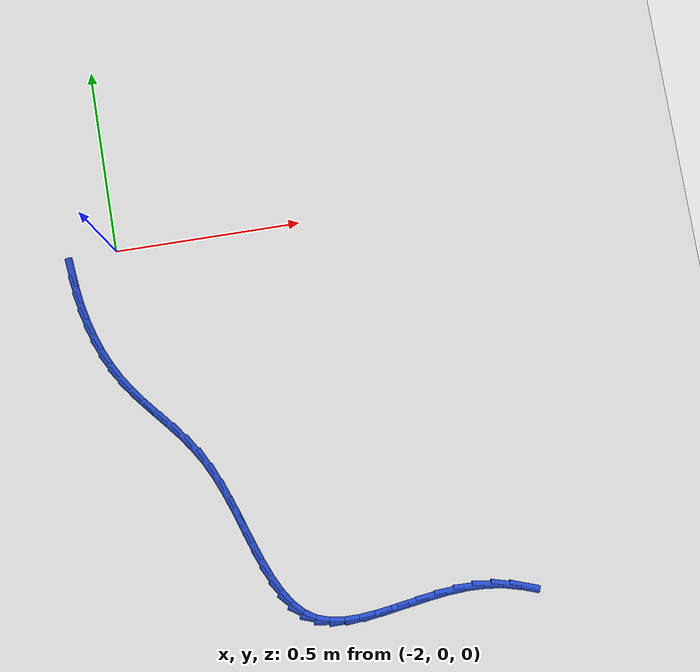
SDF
<sdf version="1.6">
 <world name="default">
  <model name="ground_plane">
   <static>1</static>
   <link name="link">
    <collision name="collision">
     <geometry><plane><normal>0 0 1</normal><size>100 100</size></plane></geometry>
     <surface><friction><ode><mu>100</mu><mu2>50</mu2></ode></friction></surface>
    </collision>
    <visual name="visual">
     <cast_shadows>0</cast_shadows>
     <geometry><plane><normal>0 0 1</normal><size>100 100</size></plane></geometry>
     <material>
      <script><uri>file://media/materials/scripts/gazebo.material</uri><name>Gazebo/WhiteGlow</name></script>
     </material>
    </visual>
   </link>
  </model>
  <model name="line">
   <link name="link_75">
    <pose>-2.124691125759527 -0.04123102063001245 0.01 0 1.57 -1.4700198959011697</pose>
    <collision name="collision">
     <geometry><cylinder><radius>0.01</radius><length>0.08</length></cylinder></geometry>
    </collision>
    <visual name="visual">
     <material>
      <script><name>Gazebo/Blue</name><uri>file://media/materials/scripts/gazebo.material</uri></script>
     </material>
     <geometry><cylinder><radius>0.01</radius><length>0.08</length></cylinder></geometry>
    </visual>
   </link>
   <link name="link_76">
    <pose>-2.1199609394238825 -0.08800944251932735 0.01 0 1.57 -1.4146267258925171</pose>
    <collision name="collision">
     <geometry><cylinder><radius>0.01</radius><length>0.08</length></cylinder></geometry>
    </collision>
    <visual name="visual">
     <material>
      <script><name>Gazebo/Blue</name><uri>file://media/materials/scripts/gazebo.material</uri></script>
     </material>
     <geometry><cylinder><radius>0.01</radius><length>0.08</length></cylinder></geometry>
    </visual>
   </link>
   <link name="link_77">
    <pose>-2.1127291262321557 -0.1339397979767713 0.01 0 1.57 -1.354823366699731</pose>
    <collision name="collision">
     <geometry><cylinder><radius>0.01</radius><length>0.08</length></cylinder></geometry>
    </collision>
    <visual name="visual">
     <material>
      <script><name>Gazebo/Blue</name><uri>file://media/materials/scripts/gazebo.material</uri></script>
     </material>
     <geometry><cylinder><radius>0.01</radius><length>0.08</length></cylinder></geometry>
    </visual>
   </link>
   <link name="link_78">
    <pose>-2.102884230996441 -0.1788127655897083 0.01 0 1.57 -1.2901554156280943</pose>
    <collision name="collision">
     <geometry><cylinder><radius>0.01</radius><length>0.08</length></cylinder></geometry>
    </collision>
    <visual name="visual">
     <material>
      <script><name>Gazebo/Blue</name><uri>file://media/materials/scripts/gazebo.material</uri></script>
     </material>
     <geometry><cylinder><radius>0.01</radius><length>0.08</length></cylinder></geometry>
    </visual>
   </link>
   <link name="link_79">
    <pose>-2.0903147985288326 -0.2224190239455045 0.01 0 1.57 -1.2202373896800103</pose>
    <collision name="collision">
     <geometry><cylinder><radius>0.01</radius><length>0.08</length></cylinder></geometry>
    </collision>
    <visual name="visual">
     <material>
      <script><name>Gazebo/Blue</name><uri>file://media/materials/scripts/gazebo.material</uri></script>
     </material>
     <geometry><cylinder><radius>0.01</radius><length>0.08</length></cylinder></geometry>
    </visual>
   </link>
   <link name="link_80">
    <pose>-2.0749093736414257 -0.2645492516315232 0.01 0 1.57 -1.1448075654654764</pose>
    <collision name="collision">
     <geometry><cylinder><radius>0.01</radius><length>0.08</length></cylinder></geometry>
    </collision>
    <visual name="visual">
     <material>
      <script><name>Gazebo/Blue</name><uri>file://media/materials/scripts/gazebo.material</uri></script>
     </material>
     <geometry><cylinder><radius>0.01</radius><length>0.08</length></cylinder></geometry>
    </visual>
   </link>
   <link name="link_81">
    <pose>-2.0565565011463147 -0.30499412723513053 0.01 0 1.57 -1.0637970115331492</pose>
    <collision name="collision">
     <geometry><cylinder><radius>0.01</radius><length>0.08</length></cylinder></geometry>
    </collision>
    <visual name="visual">
     <material>
      <script><name>Gazebo/Blue</name><uri>file://media/materials/scripts/gazebo.material</uri></script>
     </material>
     <geometry><cylinder><radius>0.01</radius><length>0.08</length></cylinder></geometry>
    </visual>
   </link>
   <link name="link_82">
    <pose>-2.0351447258555933 -0.34354432934369034 0.01 0 1.57 -0.9784634881541739</pose>
    <collision name="collision">
     <geometry><cylinder><radius>0.01</radius><length>0.08</length></cylinder></geometry>
    </collision>
    <visual name="visual">
     <material>
      <script><name>Gazebo/Blue</name><uri>file://media/materials/scripts/gazebo.material</uri></script>
     </material>
     <geometry><cylinder><radius>0.01</radius><length>0.08</length></cylinder></geometry>
    </visual>
   </link>
   <link name="link_83">
    <pose>-2.0105960217903758 -0.380024132450832 0.01 0 1.57 -0.9081283605643424</pose>
    <collision name="collision">
     <geometry><cylinder><radius>0.01</radius><length>0.08</length></cylinder></geometry>
    </collision>
    <visual name="visual">
     <material>
      <script><name>Gazebo/Blue</name><uri>file://media/materials/scripts/gazebo.material</uri></script>
     </material>
     <geometry><cylinder><radius>0.01</radius><length>0.08</length></cylinder></geometry>
    </visual>
   </link>
   <link name="link_84">
    <pose>-1.9834197595827987 -0.4148481367582705 0.01 0 1.57 -0.8693866850327507</pose>
    <collision name="collision">
     <geometry><cylinder><radius>0.01</radius><length>0.08</length></cylinder></geometry>
    </collision>
    <visual name="visual">
     <material>
      <script><name>Gazebo/Blue</name><uri>file://media/materials/scripts/gazebo.material</uri></script>
     </material>
     <geometry><cylinder><radius>0.01</radius><length>0.08</length></cylinder></geometry>
    </visual>
   </link>
   <link name="link_85">
    <pose>-1.954626697162095 -0.44893482997000655 0.01 0 1.57 -0.8622256999010799</pose>
    <collision name="collision">
     <geometry><cylinder><radius>0.01</radius><length>0.08</length></cylinder></geometry>
    </collision>
    <visual name="visual">
     <material>
      <script><name>Gazebo/Blue</name><uri>file://media/materials/scripts/gazebo.material</uri></script>
     </material>
     <geometry><cylinder><radius>0.01</radius><length>0.08</length></cylinder></geometry>
    </visual>
   </link>
   <link name="link_86">
    <pose>-1.9252436845266205 -0.48321887210347236 0.01 0 1.57 -0.8855855401181026</pose>
    <collision name="collision">
     <geometry><cylinder><radius>0.01</radius><length>0.08</length></cylinder></geometry>
    </collision>
    <visual name="visual">
     <material>
      <script><name>Gazebo/Blue</name><uri>file://media/materials/scripts/gazebo.material</uri></script>
     </material>
     <geometry><cylinder><radius>0.01</radius><length>0.08</length></cylinder></geometry>
    </visual>
   </link>
   <link name="link_87">
    <pose>-1.8962975716747323 -0.5186349231760986 0.01 0 1.57 -0.9381336343503801</pose>
    <collision name="collision">
     <geometry><cylinder><radius>0.01</radius><length>0.08</length></cylinder></geometry>
    </collision>
    <visual name="visual">
     <material>
      <script><name>Gazebo/Blue</name><uri>file://media/materials/scripts/gazebo.material</uri></script>
     </material>
     <geometry><cylinder><radius>0.01</radius><length>0.08</length></cylinder></geometry>
    </visual>
   </link>
   <link name="link_88">
    <pose>-1.86881520860479 -0.5561176432053163 0.01 0 1.57 -1.0177260478999262</pose>
    <collision name="collision">
     <geometry><cylinder><radius>0.01</radius><length>0.08</length></cylinder></geometry>
    </collision>
    <visual name="visual">
     <material>
      <script><name>Gazebo/Blue</name><uri>file://media/materials/scripts/gazebo.material</uri></script>
     </material>
     <geometry><cylinder><radius>0.01</radius><length>0.08</length></cylinder></geometry>
    </visual>
   </link>
   <link name="link_89">
    <pose>-1.843823117212242 -0.596601313779509 0.01 0 1.57 -1.1091213118437147</pose>
    <collision name="collision">
     <geometry><cylinder><radius>0.01</radius><length>0.08</length></cylinder></geometry>
    </collision>
    <visual name="visual">
     <material>
      <script><name>Gazebo/Blue</name><uri>file://media/materials/scripts/gazebo.material</uri></script>
     </material>
     <geometry><cylinder><radius>0.01</radius><length>0.08</length></cylinder></geometry>
    </visual>
   </link>
   <link name="link_90">
    <pose>-1.8219508723202977 -0.6405623835938986 0.01 0 1.57 -1.1780730105006538</pose>
    <collision name="collision">
     <geometry><cylinder><radius>0.01</radius><length>0.08</length></cylinder></geometry>
    </collision>
    <visual name="visual">
     <material>
      <script><name>Gazebo/Blue</name><uri>file://media/materials/scripts/gazebo.material</uri></script>
     </material>
     <geometry><cylinder><radius>0.01</radius><length>0.08</length></cylinder></geometry>
    </visual>
   </link>
   <link name="link_91">
    <pose>-1.8026603884798529 -0.6871305392233041 0.01 0 1.57 -1.2223083318107517</pose>
    <collision name="collision">
     <geometry><cylinder><radius>0.01</radius><length>0.08</length></cylinder></geometry>
    </collision>
    <visual name="visual">
     <material>
      <script><name>Gazebo/Blue</name><uri>file://media/materials/scripts/gazebo.material</uri></script>
     </material>
     <geometry><cylinder><radius>0.01</radius><length>0.08</length></cylinder></geometry>
    </visual>
   </link>
   <link name="link_92">
    <pose>-1.785199955101621 -0.7351890751595189 0.01 0 1.57 -1.2446292040769782</pose>
    <collision name="collision">
     <geometry><cylinder><radius>0.01</radius><length>0.08</length></cylinder></geometry>
    </collision>
    <visual name="visual">
     <material>
      <script><name>Gazebo/Blue</name><uri>file://media/materials/scripts/gazebo.material</uri></script>
     </material>
     <geometry><cylinder><radius>0.01</radius><length>0.08</length></cylinder></geometry>
    </visual>
   </link>
   <link name="link_93">
    <pose>-1.7688178615963162 -0.783621285894334 0.01 0 1.57 -1.2460467641077821</pose>
    <collision name="collision">
     <geometry><cylinder><radius>0.01</radius><length>0.08</length></cylinder></geometry>
    </collision>
    <visual name="visual">
     <material>
      <script><name>Gazebo/Blue</name><uri>file://media/materials/scripts/gazebo.material</uri></script>
     </material>
     <geometry><cylinder><radius>0.01</radius><length>0.08</length></cylinder></geometry>
    </visual>
   </link>
   <link name="link_94">
    <pose>-1.7527623973746516 -0.8313104659195429 0.01 0 1.57 -1.22558953662087</pose>
    <collision name="collision">
     <geometry><cylinder><radius>0.01</radius><length>0.08</length></cylinder></geometry>
    </collision>
    <visual name="visual">
     <material>
      <script><name>Gazebo/Blue</name><uri>file://media/materials/scripts/gazebo.material</uri></script>
     </material>
     <geometry><cylinder><radius>0.01</radius><length>0.08</length></cylinder></geometry>
    </visual>
   </link>
   <link name="link_95">
    <pose>-1.7362818518473409 -0.8771399097269375 0.01 0 1.57 -1.1799502019664923</pose>
    <collision name="collision">
     <geometry><cylinder><radius>0.01</radius><length>0.08</length></cylinder></geometry>
    </collision>
    <visual name="visual">
     <material>
      <script><name>Gazebo/Blue</name><uri>file://media/materials/scripts/gazebo.material</uri></script>
     </material>
     <geometry><cylinder><radius>0.01</radius><length>0.08</length></cylinder></geometry>
    </visual>
   </link>
   <link name="link_96">
    <pose>-1.7186245144250982 -0.9199929118083089 0.01 0 1.57 -1.102907739822609</pose>
    <collision name="collision">
     <geometry><cylinder><radius>0.01</radius><length>0.08</length></cylinder></geometry>
    </collision>
    <visual name="visual">
     <material>
      <script><name>Gazebo/Blue</name><uri>file://media/materials/scripts/gazebo.material</uri></script>
     </material>
     <geometry><cylinder><radius>0.01</radius><length>0.08</length></cylinder></geometry>
    </visual>
   </link>
   <link name="link_97">
    <pose>-1.6990386745186363 -0.958752766655451 0.01 0 1.57 -0.9848728005514489</pose>
    <collision name="collision">
     <geometry><cylinder><radius>0.01</radius><length>0.08</length></cylinder></geometry>
    </collision>
    <visual name="visual">
     <material>
      <script><name>Gazebo/Blue</name><uri>file://media/materials/scripts/gazebo.material</uri></script>
     </material>
     <geometry><cylinder><radius>0.01</radius><length>0.08</length></cylinder></geometry>
    </visual>
   </link>
   <link name="link_98">
    <pose>-1.67677262153867 -0.9923027687601546 0.01 0 1.57 -0.8142153211711299</pose>
    <collision name="collision">
     <geometry><cylinder><radius>0.01</radius><length>0.08</length></cylinder></geometry>
    </collision>
    <visual name="visual">
     <material>
      <script><name>Gazebo/Blue</name><uri>file://media/materials/scripts/gazebo.material</uri></script>
     </material>
     <geometry><cylinder><radius>0.01</radius><length>0.08</length></cylinder></geometry>
    </visual>
   </link>
   <link name="link_99">
    <pose>-1.6510746448959124 -1.0195262126142133 0.01 0 1.57 -0.5848457289060736</pose>
    <collision name="collision">
     <geometry><cylinder><radius>0.01</radius><length>0.08</length></cylinder></geometry>
    </collision>
    <visual name="visual">
     <material>
      <script><name>Gazebo/Blue</name><uri>file://media/materials/scripts/gazebo.material</uri></script>
     </material>
     <geometry><cylinder><radius>0.01</radius><length>0.08</length></cylinder></geometry>
    </visual>
   </link>
   <link name="link_100">
    <pose>-1.6211949952531923 -1.0393100156254163 0.01 0 1.57 -0.33400048587377956</pose>
    <collision name="collision">
     <geometry><cylinder><radius>0.01</radius><length>0.08</length></cylinder></geometry>
    </collision>
    <visual name="visual">
     <material>
      <script><name>Gazebo/Blue</name><uri>file://media/materials/scripts/gazebo.material</uri></script>
     </material>
     <geometry><cylinder><radius>0.01</radius><length>0.08</length></cylinder></geometry>
    </visual>
   </link>
   <link name="link_101">
    <pose>-1.5867705671861345 -1.0512553217946938 0.01 0 1.57 -0.13624378774731652</pose>
    <collision name="collision">
     <geometry><cylinder><radius>0.01</radius><length>0.08</length></cylinder></geometry>
    </collision>
    <visual name="visual">
     <material>
      <script><name>Gazebo/Blue</name><uri>file://media/materials/scripts/gazebo.material</uri></script>
     </material>
     <geometry><cylinder><radius>0.01</radius><length>0.08</length></cylinder></geometry>
    </visual>
   </link>
   <link name="link_102">
    <pose>-1.5482870188440752 -1.0565311506166282 0.01 0 1.57 0.00039112940754568306</pose>
    <collision name="collision">
     <geometry><cylinder><radius>0.01</radius><length>0.08</length></cylinder></geometry>
    </collision>
    <visual name="visual">
     <material>
      <script><name>Gazebo/Blue</name><uri>file://media/materials/scripts/gazebo.material</uri></script>
     </material>
     <geometry><cylinder><radius>0.01</radius><length>0.08</length></cylinder></geometry>
    </visual>
   </link>
   <link name="link_103">
    <pose>-1.5063427293321976 -1.0565147449706849 0.01 0 1.57 0.08751724929016876</pose>
    <collision name="collision">
     <geometry><cylinder><radius>0.01</radius><length>0.08</length></cylinder></geometry>
    </collision>
    <visual name="visual">
     <material>
      <script><name>Gazebo/Blue</name><uri>file://media/materials/scripts/gazebo.material</uri></script>
     </material>
     <geometry><cylinder><radius>0.01</radius><length>0.08</length></cylinder></geometry>
    </visual>
   </link>
   <link name="link_104">
    <pose>-1.4615360777556836 -1.0525833477363307 0.01 0 1.57 0.1365792280393224</pose>
    <collision name="collision">
     <geometry><cylinder><radius>0.01</radius><length>0.08</length></cylinder></geometry>
    </collision>
    <visual name="visual">
     <material>
      <script><name>Gazebo/Blue</name><uri>file://media/materials/scripts/gazebo.material</uri></script>
     </material>
     <geometry><cylinder><radius>0.01</radius><length>0.08</length></cylinder></geometry>
    </visual>
   </link>
   <link name="link_105">
    <pose>-1.4144654432197123 -1.0461142017930307 0.01 0 1.57 0.15528945172906253</pose>
    <collision name="collision">
     <geometry><cylinder><radius>0.01</radius><length>0.08</length></cylinder></geometry>
    </collision>
    <visual name="visual">
     <material>
      <script><name>Gazebo/Blue</name><uri>file://media/materials/scripts/gazebo.material</uri></script>
     </material>
     <geometry><cylinder><radius>0.01</radius><length>0.08</length></cylinder></geometry>
    </visual>
   </link>
   <link name="link_106">
    <pose>-1.3657292048294678 -1.0384845500202518 0.01 0 1.57 0.14775856647262406</pose>
    <collision name="collision">
     <geometry><cylinder><radius>0.01</radius><length>0.08</length></cylinder></geometry>
    </collision>
    <visual name="visual">
     <material>
      <script><name>Gazebo/Blue</name><uri>file://media/materials/scripts/gazebo.material</uri></script>
     </material>
     <geometry><cylinder><radius>0.01</radius><length>0.08</length></cylinder></geometry>
    </visual>
   </link>
   <link name="link_107">
    <pose>-1.3159257416901287 -1.0310716352974592 0.01 0 1.57 0.11523550691735754</pose>
    <collision name="collision">
     <geometry><cylinder><radius>0.01</radius><length>0.08</length></cylinder></geometry>
    </collision>
    <visual name="visual">
     <material>
      <script><name>Gazebo/Blue</name><uri>file://media/materials/scripts/gazebo.material</uri></script>
     </material>
     <geometry><cylinder><radius>0.01</radius><length>0.08</length></cylinder></geometry>
    </visual>
   </link>
   <link name="link_108">
    <pose>-1.2656534329068772 -1.0252527005041188 0.01 0 1.57 0.05673112956055907</pose>
    <collision name="collision">
     <geometry><cylinder><radius>0.01</radius><length>0.08</length></cylinder></geometry>
    </collision>
    <visual name="visual">
     <material>
      <script><name>Gazebo/Blue</name><uri>file://media/materials/scripts/gazebo.material</uri></script>
     </material>
     <geometry><cylinder><radius>0.01</radius><length>0.08</length></cylinder></geometry>
    </visual>
   </link>
   <link name="link_109">
    <pose>-1.2155106575848957 -1.0224049885196966 0.01 0 1.57 -0.03036115978798175</pose>
    <collision name="collision">
     <geometry><cylinder><radius>0.01</radius><length>0.08</length></cylinder></geometry>
    </collision>
    <visual name="visual">
     <material>
      <script><name>Gazebo/Blue</name><uri>file://media/materials/scripts/gazebo.material</uri></script>
     </material>
     <geometry><cylinder><radius>0.01</radius><length>0.08</length></cylinder></geometry>
    </visual>
   </link>
   <link name="link_110">
    <pose>-1.1660957948293635 -1.023905742223659 0.01 0 1.57 -0.14737256381780198</pose>
    <collision name="collision">
     <geometry><cylinder><radius>0.01</radius><length>0.08</length></cylinder></geometry>
    </collision>
    <visual name="visual">
     <material>
      <script><name>Gazebo/Blue</name><uri>file://media/materials/scripts/gazebo.material</uri></script>
     </material>
     <geometry><cylinder><radius>0.01</radius><length>0.08</length></cylinder></geometry>
    </visual>
   </link>
   <link name="link_111">
    <pose>-1.1179880354492722 -1.031047282670404 0.01 0 1.57 -0.26124336589440444</pose>
    <collision name="collision">
     <geometry><cylinder><radius>0.01</radius><length>0.08</length></cylinder></geometry>
    </collision>
    <visual name="visual">
     <material>
      <script><name>Gazebo/Blue</name><uri>file://media/materials/scripts/gazebo.material</uri></script>
     </material>
     <geometry><cylinder><radius>0.01</radius><length>0.08</length></cylinder></geometry>
    </visual>
   </link>
   <link name="link_112">
    <pose>-1.0714006716371194 -1.0435025699250424 0.01 0 1.57 -0.3401248810154172</pose>
    <collision name="collision">
     <geometry><cylinder><radius>0.01</radius><length>0.08</length></cylinder></geometry>
    </collision>
    <visual name="visual">
     <material>
      <script><name>Gazebo/Blue</name><uri>file://media/materials/scripts/gazebo.material</uri></script>
     </material>
     <geometry><cylinder><radius>0.01</radius><length>0.08</length></cylinder></geometry>
    </visual>
   </link>
  </model>
 </world>
</sdf>
